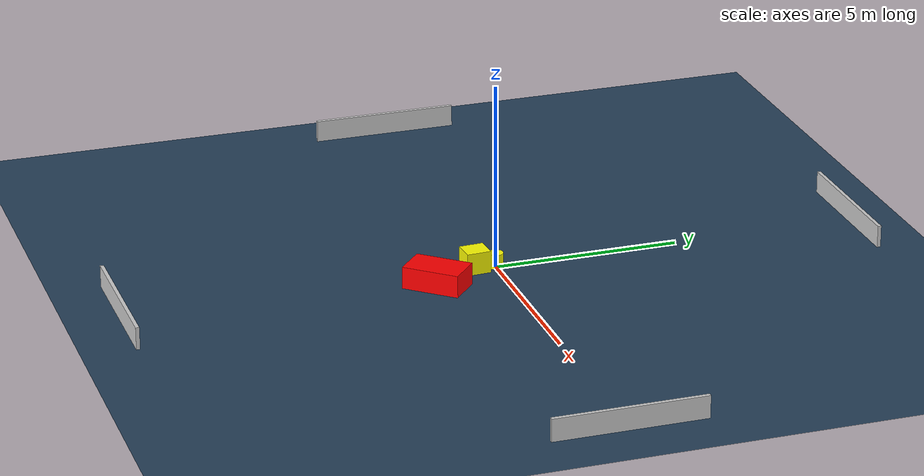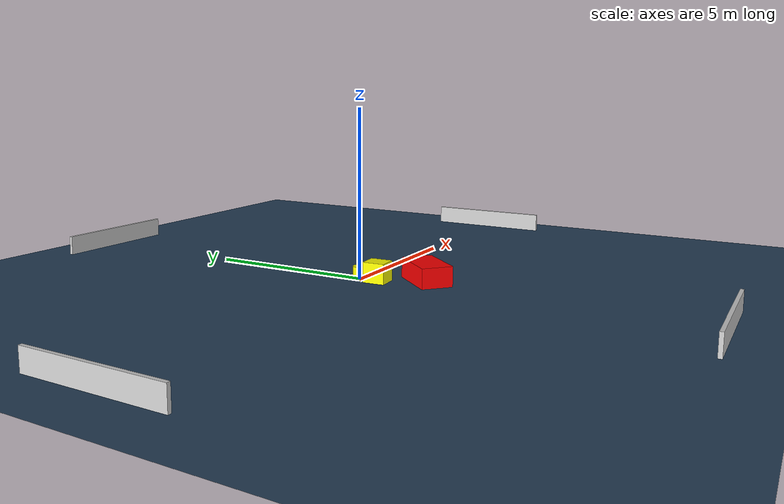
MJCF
<?xml version="1.0" ?>
<mujoco model="generated_environment">
  <option timestep="0.01" integrator="RK4" cone="elliptic"/>
  <default>
    <geom density="1"/>
  </default>
  <asset>
    <texture builtin="gradient" height="3072" name="skybox" rgb1="0.3 0.5 0.7" rgb2="0 0 0" type="skybox" width="512"/>
    <texture builtin="checker" height="300" name="groundplane" rgb1="0.2 0.3 0.4" rgb2="0.1 0.2 0.3" type="2d" width="300"/>
    <material name="groundplane" reflectance="0.2" texrepeat="5 5" texture="groundplane"/>
  </asset>
  <worldbody>
    <light dir="0 0 -1" directional="true" pos="0 0 1.5"/>
    <geom condim="3" friction="0.5 0.005 0.001" material="groundplane" name="floor" pos="0 0 0" size="0 0 0.05" type="plane"/>
    <body name="walls">
      <geom name="wall_1" condim="4" pos="-10.0 0.0 0.3" rgba="0.800000011920929 0.800000011920929 0.800000011920929 1.0" size="0.05 2.0 0.3" type="box"/>
      <geom name="wall_2" condim="4" pos="10.0 0.0 0.3" rgba="0.800000011920929 0.800000011920929 0.800000011920929 1.0" size="0.05 2.0 0.3" type="box"/>
      <geom name="wall_3" condim="4" pos="0.0 -10.0 0.3" rgba="0.800000011920929 0.800000011920929 0.800000011920929 1.0" size="2.0 0.05 0.3" type="box"/>
      <geom name="wall_4" condim="4" pos="0.0 10.0 0.3" rgba="0.800000011920929 0.800000011920929 0.800000011920929 1.0" size="2.0 0.05 0.3" type="box"/>
    </body>
    <body name="robot">
      <joint name="joint_x" type="slide" pos="0 0 0" axis="1 0 0"/>
      <joint name="joint_y" type="slide" pos="0 0 0" axis="0 1 0"/>
      <geom name="robot" type="cylinder" pos="0.0 0.0 0.2" size="0.2 0.2 0.0" mass="5.0" friction="1.0 0.005 0.0001" condim="4" rgba="1.0 1.0 0.0 1.0"/>
    </body>
    <body name="obstacle_1_movable">
      <geom name="obstacle_1_movable" condim="4" pos="0.03462691099209165 -0.5762515395387059 0.3" euler="0 0 3.431126376041247" friction="0.0 0.005 0.001" rgba="1.0 1.0 0.0 1.0" size="0.29486416479620137 0.3294364337445965 0.3" type="box" mass="0.1"/>
      <joint type="free"/>
    </body>
    <body name="obstacle_2_static">
      <geom name="obstacle_2_static" condim="4" pos="0.7119043645216001 -1.8270076061177796 0.3" euler="0 0 318.6658104380698" friction="0.0 0.005 0.001" rgba="1.0 0.0 0.0 1.0" size="0.470511082183888 0.7746192998684969 0.3" type="box"/>
    </body>
  </worldbody>
  <actuator>
    <motor name="actuator_x" joint="joint_x" gear="1" ctrlrange="-1 1"/>
    <motor name="actuator_y" joint="joint_y" gear="1" ctrlrange="-1 1"/>
  </actuator>
</mujoco>
